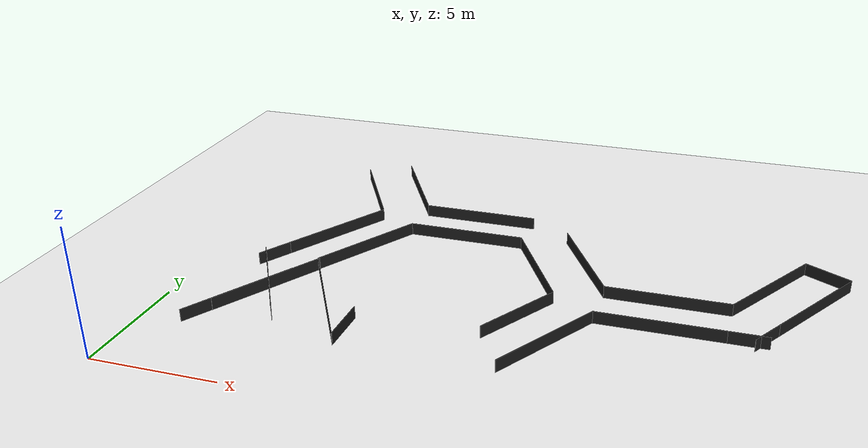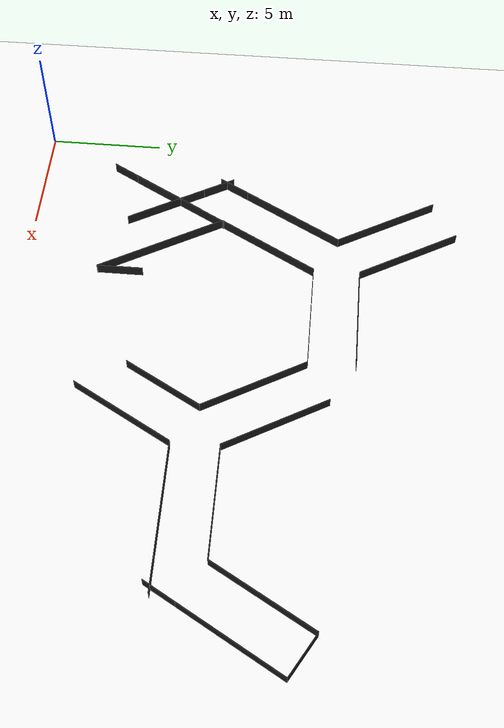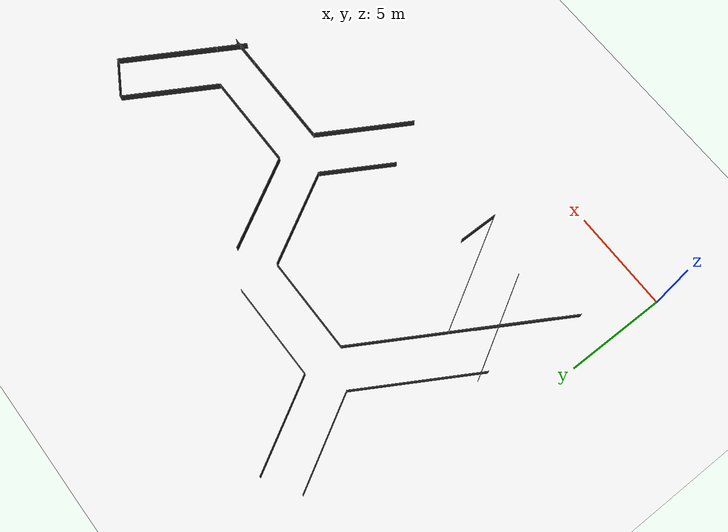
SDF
<sdf version="1.6">
 <world name="default">
  <model name="ground_plane">
   <static>1</static>
   <link name="link">
    <collision name="collision">
     <geometry><plane><normal>0 0 1</normal><size>100 100</size></plane></geometry>
     <surface><friction><ode><mu>100</mu><mu2>50</mu2></ode></friction></surface>
    </collision>
    <visual name="visual">
     <cast_shadows>0</cast_shadows>
     <geometry><plane><normal>0 0 1</normal><size>100 100</size></plane></geometry>
     <material>
      <script><uri>file://media/materials/scripts/gazebo.material</uri><name>Gazebo/White</name></script>
     </material>
    </visual>
   </link>
  </model>
  <model name="T_maze_0">
   <link name="link">
    <inertial>
     <mass>1</mass>
     <inertia>
      <ixx>0.166667</ixx>
      <ixy>0</ixy>
      <ixz>0</ixz>
      <iyy>0.166667</iyy>
      <iyz>0</iyz>
      <izz>0.166667</izz>
     </inertia>
    </inertial>
    <pose>8.67982 0.164587 -0 0 -0 0</pose>
    <visual name="ModelPreview_1::link::visual_2">
     <geometry><box><size>0.015 4.8453 0.5</size></box></geometry>
     <material>
      <script><name>Gazebo/FlatBlack</name><uri>file://media/materials/scripts/gazebo.material</uri></script>
      <shader type="pixel"><normal_map>__default__</normal_map></shader>
      <ambient>0.1 0.1 0.1 1</ambient>
      <diffuse>0.1 0.1 0.1 1</diffuse>
      <specular>0.01 0.01 0.01 1</specular>
      <emissive>0 0 0 1</emissive>
     </material>
     <pose>2 0 0 0 -0 0</pose>
    </visual>
    <visual name="visual">
     <geometry><box><size>0.015 4.8453 0.5</size></box></geometry>
     <material>
      <script><name>Gazebo/FlatBlack</name><uri>file://media/materials/scripts/gazebo.material</uri></script>
      <shader type="pixel"><normal_map>__default__</normal_map></shader>
      <ambient>0.1 0.1 0.1 1</ambient>
      <diffuse>0.1 0.1 0.1 1</diffuse>
      <specular>0.01 0.01 0.01 1</specular>
      <emissive>0 0 0 1</emissive>
     </material>
    </visual>
    <collision name="collision_1">
     <pose>2 0 0 0 -0 0</pose>
     <geometry><box><size>0.015 4.8453 0.5</size></box></geometry>
     <surface>
      <friction>
       <ode><mu>1</mu><mu2>1</mu2><fdir1>0 0 0</fdir1><slip1>0</slip1><slip2>0</slip2></ode>
       <torsional>
        <coefficient>1</coefficient>
        <patch_radius>0</patch_radius>
        <surface_radius>0</surface_radius>
        <use_patch_radius>1</use_patch_radius>
        <ode><slip>0</slip></ode>
       </torsional>
      </friction>
      <bounce><restitution_coefficient>0</restitution_coefficient><threshold>1e+06</threshold></bounce>
      <contact>
       <collide_without_contact>0</collide_without_contact>
       <collide_without_contact_bitmask>1</collide_without_contact_bitmask>
       <collide_bitmask>1</collide_bitmask>
       <ode>
        <soft_cfm>0</soft_cfm>
        <soft_erp>0.2</soft_erp>
        <kp>1e+13</kp>
        <kd>1</kd>
        <max_vel>0.01</max_vel>
        <min_depth>0</min_depth>
       </ode>
       <bullet>
        <split_impulse>1</split_impulse>
        <split_impulse_penetration_threshold>-0.01</split_impulse_penetration_threshold>
        <soft_cfm>0</soft_cfm>
        <soft_erp>0.2</soft_erp>
        <kp>1e+13</kp>
        <kd>1</kd>
       </bullet>
      </contact>
     </surface>
    </collision>
    <collision name="collision">
     <geometry><box><size>0.015 4.8453 0.5</size></box></geometry>
     <surface>
      <friction>
       <ode><mu>1</mu><mu2>1</mu2><fdir1>0 0 0</fdir1><slip1>0</slip1><slip2>0</slip2></ode>
       <torsional>
        <coefficient>1</coefficient>
        <patch_radius>0</patch_radius>
        <surface_radius>0</surface_radius>
        <use_patch_radius>1</use_patch_radius>
        <ode><slip>0</slip></ode>
       </torsional>
      </friction>
      <bounce><restitution_coefficient>0</restitution_coefficient><threshold>1e+06</threshold></bounce>
      <contact>
       <collide_without_contact>0</collide_without_contact>
       <collide_without_contact_bitmask>1</collide_without_contact_bitmask>
       <collide_bitmask>1</collide_bitmask>
       <ode>
        <soft_cfm>0</soft_cfm>
        <soft_erp>0.2</soft_erp>
        <kp>1e+13</kp>
        <kd>1</kd>
        <max_vel>0.01</max_vel>
        <min_depth>0</min_depth>
       </ode>
       <bullet>
        <split_impulse>1</split_impulse>
        <split_impulse_penetration_threshold>-0.01</split_impulse_penetration_threshold>
        <soft_cfm>0</soft_cfm>
        <soft_erp>0.2</soft_erp>
        <kp>1e+13</kp>
        <kd>1</kd>
       </bullet>
      </contact>
     </surface>
    </collision>
   </link>
   <link name="link_clone_0">
    <inertial>
     <mass>1</mass>
     <inertia>
      <ixx>0.166667</ixx>
      <ixy>0</ixy>
      <ixz>0</ixz>
      <iyy>0.166667</iyy>
      <iyz>0</iyz>
      <izz>0.166667</izz>
     </inertia>
    </inertial>
    <pose>7.58433 5.52401 0 5e-06 -0 -2.0944</pose>
    <visual name="visual_2">
     <geometry><box><size>0.015 4.8453 0.5</size></box></geometry>
     <material>
      <script><name>Gazebo/FlatBlack</name><uri>file://media/materials/scripts/gazebo.material</uri></script>
      <shader type="pixel"><normal_map>__default__</normal_map></shader>
      <ambient>0.1 0.1 0.1 1</ambient>
      <diffuse>0.1 0.1 0.1 1</diffuse>
      <specular>0.01 0.01 0.01 1</specular>
      <emissive>0 0 0 1</emissive>
     </material>
     <pose>2 0 0 0 -0 0</pose>
    </visual>
    <visual name="visual">
     <geometry><box><size>0.015 4.8453 0.5</size></box></geometry>
     <material>
      <script><name>Gazebo/FlatBlack</name><uri>file://media/materials/scripts/gazebo.material</uri></script>
      <shader type="pixel"><normal_map>__default__</normal_map></shader>
      <ambient>0.1 0.1 0.1 1</ambient>
      <diffuse>0.1 0.1 0.1 1</diffuse>
      <specular>0.01 0.01 0.01 1</specular>
      <emissive>0 0 0 1</emissive>
     </material>
    </visual>
    <collision name="collision_1">
     <pose>2 0 0 0 -0 0</pose>
     <geometry><box><size>0.015 4.8453 0.5</size></box></geometry>
     <surface>
      <friction>
       <ode><mu>1</mu><mu2>1</mu2><fdir1>0 0 0</fdir1><slip1>0</slip1><slip2>0</slip2></ode>
       <torsional>
        <coefficient>1</coefficient>
        <patch_radius>0</patch_radius>
        <surface_radius>0</surface_radius>
        <use_patch_radius>1</use_patch_radius>
        <ode><slip>0</slip></ode>
       </torsional>
      </friction>
      <bounce><restitution_coefficient>0</restitution_coefficient><threshold>1e+06</threshold></bounce>
      <contact>
       <collide_without_contact>0</collide_without_contact>
       <collide_without_contact_bitmask>1</collide_without_contact_bitmask>
       <collide_bitmask>1</collide_bitmask>
       <ode>
        <soft_cfm>0</soft_cfm>
        <soft_erp>0.2</soft_erp>
        <kp>1e+13</kp>
        <kd>1</kd>
        <max_vel>0.01</max_vel>
        <min_depth>0</min_depth>
       </ode>
       <bullet>
        <split_impulse>1</split_impulse>
        <split_impulse_penetration_threshold>-0.01</split_impulse_penetration_threshold>
        <soft_cfm>0</soft_cfm>
        <soft_erp>0.2</soft_erp>
        <kp>1e+13</kp>
        <kd>1</kd>
       </bullet>
      </contact>
     </surface>
    </collision>
    <collision name="collision">
     <geometry><box><size>0.015 4.8453 0.5</size></box></geometry>
     <surface>
      <friction>
       <ode><mu>1</mu><mu2>1</mu2><fdir1>0 0 0</fdir1><slip1>0</slip1><slip2>0</slip2></ode>
       <torsional>
        <coefficient>1</coefficient>
        <patch_radius>0</patch_radius>
        <surface_radius>0</surface_radius>
        <use_patch_radius>1</use_patch_radius>
        <ode><slip>0</slip></ode>
       </torsional>
      </friction>
      <bounce><restitution_coefficient>0</restitution_coefficient><threshold>1e+06</threshold></bounce>
      <contact>
       <collide_without_contact>0</collide_without_contact>
       <collide_without_contact_bitmask>1</collide_without_contact_bitmask>
       <collide_bitmask>1</collide_bitmask>
       <ode>
        <soft_cfm>0</soft_cfm>
        <soft_erp>0.2</soft_erp>
        <kp>1e+13</kp>
        <kd>1</kd>
        <max_vel>0.01</max_vel>
        <min_depth>0</min_depth>
       </ode>
       <bullet>
        <split_impulse>1</split_impulse>
        <split_impulse_penetration_threshold>-0.01</split_impulse_penetration_threshold>
        <soft_cfm>0</soft_cfm>
        <soft_erp>0.2</soft_erp>
        <kp>1e+13</kp>
        <kd>1</kd>
       </bullet>
      </contact>
     </surface>
    </collision>
   </link>
   <link name="link_clone_0_clone">
    <inertial>
     <mass>1</mass>
     <inertia>
      <ixx>0.166667</ixx>
      <ixy>0</ixy>
      <ixz>0</ixz>
      <iyy>0.166667</iyy>
      <iyz>0</iyz>
      <izz>0.166667</izz>
     </inertia>
    </inertial>
    <pose>12.7746 -3.46264 -0 5e-06 -0 -2.0944</pose>
    <visual name="visual_2">
     <geometry><box><size>0.015 4.8453 0.5</size></box></geometry>
     <material>
      <script><name>Gazebo/FlatBlack</name><uri>file://media/materials/scripts/gazebo.material</uri></script>
      <shader type="pixel"><normal_map>__default__</normal_map></shader>
      <ambient>0.1 0.1 0.1 1</ambient>
      <diffuse>0.1 0.1 0.1 1</diffuse>
      <specular>0.01 0.01 0.01 1</specular>
      <emissive>0 0 0 1</emissive>
     </material>
     <pose>2 0 0 0 -0 0</pose>
    </visual>
    <visual name="visual">
     <geometry><box><size>0.015 4.8453 0.5</size></box></geometry>
     <material>
      <script><name>Gazebo/FlatBlack</name><uri>file://media/materials/scripts/gazebo.material</uri></script>
      <shader type="pixel"><normal_map>__default__</normal_map></shader>
      <ambient>0.1 0.1 0.1 1</ambient>
      <diffuse>0.1 0.1 0.1 1</diffuse>
      <specular>0.01 0.01 0.01 1</specular>
      <emissive>0 0 0 1</emissive>
     </material>
    </visual>
    <collision name="collision_1">
     <pose>2 0 0 0 -0 0</pose>
     <geometry><box><size>0.015 4.8453 0.5</size></box></geometry>
     <surface>
      <friction>
       <ode><mu>1</mu><mu2>1</mu2><fdir1>0 0 0</fdir1><slip1>0</slip1><slip2>0</slip2></ode>
       <torsional>
        <coefficient>1</coefficient>
        <patch_radius>0</patch_radius>
        <surface_radius>0</surface_radius>
        <use_patch_radius>1</use_patch_radius>
        <ode><slip>0</slip></ode>
       </torsional>
      </friction>
      <bounce><restitution_coefficient>0</restitution_coefficient><threshold>1e+06</threshold></bounce>
      <contact>
       <collide_without_contact>0</collide_without_contact>
       <collide_without_contact_bitmask>1</collide_without_contact_bitmask>
       <collide_bitmask>1</collide_bitmask>
       <ode>
        <soft_cfm>0</soft_cfm>
        <soft_erp>0.2</soft_erp>
        <kp>1e+13</kp>
        <kd>1</kd>
        <max_vel>0.01</max_vel>
        <min_depth>0</min_depth>
       </ode>
       <bullet>
        <split_impulse>1</split_impulse>
        <split_impulse_penetration_threshold>-0.01</split_impulse_penetration_threshold>
        <soft_cfm>0</soft_cfm>
        <soft_erp>0.2</soft_erp>
        <kp>1e+13</kp>
        <kd>1</kd>
       </bullet>
      </contact>
     </surface>
    </collision>
    <collision name="collision">
     <geometry><box><size>0.015 4.8453 0.5</size></box></geometry>
     <surface>
      <friction>
       <ode><mu>1</mu><mu2>1</mu2><fdir1>0 0 0</fdir1><slip1>0</slip1><slip2>0</slip2></ode>
       <torsional>
        <coefficient>1</coefficient>
        <patch_radius>0</patch_radius>
        <surface_radius>0</surface_radius>
        <use_patch_radius>1</use_patch_radius>
        <ode><slip>0</slip></ode>
       </torsional>
      </friction>
      <bounce><restitution_coefficient>0</restitution_coefficient><threshold>1e+06</threshold></bounce>
      <contact>
       <collide_without_contact>0</collide_without_contact>
       <collide_without_contact_bitmask>1</collide_without_contact_bitmask>
       <collide_bitmask>1</collide_bitmask>
       <ode>
        <soft_cfm>0</soft_cfm>
        <soft_erp>0.2</soft_erp>
        <kp>1e+13</kp>
        <kd>1</kd>
        <max_vel>0.01</max_vel>
        <min_depth>0</min_depth>
       </ode>
       <bullet>
        <split_impulse>1</split_impulse>
        <split_impulse_penetration_threshold>-0.01</split_impulse_penetration_threshold>
        <soft_cfm>0</soft_cfm>
        <soft_erp>0.2</soft_erp>
        <kp>1e+13</kp>
        <kd>1</kd>
       </bullet>
      </contact>
     </surface>
    </collision>
   </link>
   <link name="link_clone_0_clone_clone_1_clone_0">
    <inertial>
     <mass>1</mass>
     <inertia>
      <ixx>0.166667</ixx>
      <ixy>0</ixy>
      <ixz>0</ixz>
      <iyy>0.166667</iyy>
      <iyz>0</iyz>
      <izz>0.166667</izz>
     </inertia>
    </inertial>
    <pose>2.39592 3.79036 1e-06 5e-06 -0 2.0944</pose>
    <visual name="visual">
     <geometry><box><size>0.015 3.7053 0.5</size></box></geometry>
     <material>
      <script><name>Gazebo/FlatBlack</name><uri>file://media/materials/scripts/gazebo.material</uri></script>
      <shader type="pixel"><normal_map>__default__</normal_map></shader>
      <ambient>0.1 0.1 0.1 1</ambient>
      <diffuse>0.1 0.1 0.1 1</diffuse>
      <specular>0.01 0.01 0.01 1</specular>
      <emissive>0 0 0 1</emissive>
     </material>
     <pose>0 -0.57 0 0 -0 0</pose>
    </visual>
    <visual name="visual_2">
     <geometry><box><size>0.015 4.8453 0.5</size></box></geometry>
     <material>
      <script><name>Gazebo/FlatBlack</name><uri>file://media/materials/scripts/gazebo.material</uri></script>
      <shader type="pixel"><normal_map>__default__</normal_map></shader>
      <ambient>0.1 0.1 0.1 1</ambient>
      <diffuse>0.1 0.1 0.1 1</diffuse>
      <specular>0.01 0.01 0.01 1</specular>
      <emissive>0 0 0 1</emissive>
     </material>
     <pose>2 0 0 0 -0 0</pose>
    </visual>
    <collision name="collision_1">
     <pose>2 0 0 0 -0 0</pose>
     <geometry><box><size>0.015 4.8453 0.5</size></box></geometry>
     <surface>
      <friction>
       <ode><mu>1</mu><mu2>1</mu2><fdir1>0 0 0</fdir1><slip1>0</slip1><slip2>0</slip2></ode>
       <torsional>
        <coefficient>1</coefficient>
        <patch_radius>0</patch_radius>
        <surface_radius>0</surface_radius>
        <use_patch_radius>1</use_patch_radius>
        <ode><slip>0</slip></ode>
       </torsional>
      </friction>
      <bounce><restitution_coefficient>0</restitution_coefficient><threshold>1e+06</threshold></bounce>
      <contact>
       <collide_without_contact>0</collide_without_contact>
       <collide_without_contact_bitmask>1</collide_without_contact_bitmask>
       <collide_bitmask>1</collide_bitmask>
       <ode>
        <soft_cfm>0</soft_cfm>
        <soft_erp>0.2</soft_erp>
        <kp>1e+13</kp>
        <kd>1</kd>
        <max_vel>0.01</max_vel>
        <min_depth>0</min_depth>
       </ode>
       <bullet>
        <split_impulse>1</split_impulse>
        <split_impulse_penetration_threshold>-0.01</split_impulse_penetration_threshold>
        <soft_cfm>0</soft_cfm>
        <soft_erp>0.2</soft_erp>
        <kp>1e+13</kp>
        <kd>1</kd>
       </bullet>
      </contact>
     </surface>
    </collision>
    <collision name="collision">
     <pose>0 -0.57 0 0 -0 0</pose>
     <geometry><box><size>0.015 3.7053 0.5</size></box></geometry>
     <surface>
      <friction>
       <ode><mu>1</mu><mu2>1</mu2><fdir1>0 0 0</fdir1><slip1>0</slip1><slip2>0</slip2></ode>
       <torsional>
        <coefficient>1</coefficient>
        <patch_radius>0</patch_radius>
        <surface_radius>0</surface_radius>
        <use_patch_radius>1</use_patch_radius>
        <ode><slip>0</slip></ode>
       </torsional>
      </friction>
      <bounce><restitution_coefficient>0</restitution_coefficient><threshold>1e+06</threshold></bounce>
      <contact>
       <collide_without_contact>0</collide_without_contact>
       <collide_without_contact_bitmask>1</collide_without_contact_bitmask>
       <collide_bitmask>1</collide_bitmask>
       <ode>
        <soft_cfm>0</soft_cfm>
        <soft_erp>0.2</soft_erp>
        <kp>1e+13</kp>
        <kd>1</kd>
        <max_vel>0.01</max_vel>
        <min_depth>0</min_depth>
       </ode>
       <bullet>
        <split_impulse>1</split_impulse>
        <split_impulse_penetration_threshold>-0.01</split_impulse_penetration_threshold>
        <soft_cfm>0</soft_cfm>
        <soft_erp>0.2</soft_erp>
        <kp>1e+13</kp>
        <kd>1</kd>
       </bullet>
      </contact>
     </surface>
    </collision>
   </link>
   <link name="link_clone_1_clone">
    <inertial>
     <mass>1</mass>
     <inertia>
      <ixx>0.166667</ixx>
      <ixy>0</ixy>
      <ixz>0</ixz>
      <iyy>0.166667</iyy>
      <iyz>0</iyz>
      <izz>0.166667</izz>
     </inertia>
    </inertial>
    <pose>3.49174 9.15144 -0 0 -0 0</pose>
    <visual name="visual">
     <geometry><box><size>0.015 4.8453 0.5</size></box></geometry>
     <material>
      <script><name>Gazebo/FlatBlack</name><uri>file://media/materials/scripts/gazebo.material</uri></script>
      <shader type="pixel"><normal_map>__default__</normal_map></shader>
      <ambient>0.1 0.1 0.1 1</ambient>
      <diffuse>0.1 0.1 0.1 1</diffuse>
      <specular>0.01 0.01 0.01 1</specular>
      <emissive>0 0 0 1</emissive>
     </material>
    </visual>
    <visual name="visual_2">
     <geometry><box><size>0.015 4.8453 0.5</size></box></geometry>
     <material>
      <script><name>Gazebo/FlatBlack</name><uri>file://media/materials/scripts/gazebo.material</uri></script>
      <shader type="pixel"><normal_map>__default__</normal_map></shader>
      <ambient>0.1 0.1 0.1 1</ambient>
      <diffuse>0.1 0.1 0.1 1</diffuse>
      <specular>0.01 0.01 0.01 1</specular>
      <emissive>0 0 0 1</emissive>
     </material>
     <pose>2 0 0 0 -0 0</pose>
    </visual>
    <collision name="collision">
     <geometry><box><size>0.015 4.8453 0.5</size></box></geometry>
     <surface>
      <friction>
       <ode><mu>1</mu><mu2>1</mu2><fdir1>0 0 0</fdir1><slip1>0</slip1><slip2>0</slip2></ode>
       <torsional>
        <coefficient>1</coefficient>
        <patch_radius>0</patch_radius>
        <surface_radius>0</surface_radius>
        <use_patch_radius>1</use_patch_radius>
        <ode><slip>0</slip></ode>
       </torsional>
      </friction>
      <bounce><restitution_coefficient>0</restitution_coefficient><threshold>1e+06</threshold></bounce>
      <contact>
       <collide_without_contact>0</collide_without_contact>
       <collide_without_contact_bitmask>1</collide_without_contact_bitmask>
       <collide_bitmask>1</collide_bitmask>
       <ode>
        <soft_cfm>0</soft_cfm>
        <soft_erp>0.2</soft_erp>
        <kp>1e+13</kp>
        <kd>1</kd>
        <max_vel>0.01</max_vel>
        <min_depth>0</min_depth>
       </ode>
       <bullet>
        <split_impulse>1</split_impulse>
        <split_impulse_penetration_threshold>-0.01</split_impulse_penetration_threshold>
        <soft_cfm>0</soft_cfm>
        <soft_erp>0.2</soft_erp>
        <kp>1e+13</kp>
        <kd>1</kd>
       </bullet>
      </contact>
     </surface>
    </collision>
    <collision name="collision_1">
     <pose>2 0 0 0 -0 0</pose>
     <geometry><box><size>0.015 4.8453 0.5</size></box></geometry>
     <surface>
      <friction>
       <ode><mu>1</mu><mu2>1</mu2><fdir1>0 0 0</fdir1><slip1>0</slip1><slip2>0</slip2></ode>
       <torsional>
        <coefficient>1</coefficient>
        <patch_radius>0</patch_radius>
        <surface_radius>0</surface_radius>
        <use_patch_radius>1</use_patch_radius>
        <ode><slip>0</slip></ode>
       </torsional>
      </friction>
      <bounce><restitution_coefficient>0</restitution_coefficient><threshold>1e+06</threshold></bounce>
      <contact>
       <collide_without_contact>0</collide_without_contact>
       <collide_without_contact_bitmask>1</collide_without_contact_bitmask>
       <collide_bitmask>1</collide_bitmask>
       <ode>
        <soft_cfm>0</soft_cfm>
        <soft_erp>0.2</soft_erp>
        <kp>1e+13</kp>
        <kd>1</kd>
        <max_vel>0.01</max_vel>
        <min_depth>0</min_depth>
       </ode>
       <bullet>
        <split_impulse>1</split_impulse>
        <split_impulse_penetration_threshold>-0.01</split_impulse_penetration_threshold>
        <soft_cfm>0</soft_cfm>
        <soft_erp>0.2</soft_erp>
        <kp>1e+13</kp>
        <kd>1</kd>
       </bullet>
      </contact>
     </surface>
    </collision>
   </link>
   <link name="link_clone_clone">
    <inertial>
     <mass>1</mass>
     <inertia>
      <ixx>0.166667</ixx>
      <ixy>0</ixy>
      <ixz>0</ixz>
      <iyy>0.166667</iyy>
      <iyz>0</iyz>
      <izz>0.166667</izz>
     </inertia>
    </inertial>
    <pose>7.58495 -5.19374 -0 5e-06 -0 2.0944</pose>
    <visual name="visual_2">
     <geometry><box><size>0.015 4.8453 0.5</size></box></geometry>
     <material>
      <script><name>Gazebo/FlatBlack</name><uri>file://media/materials/scripts/gazebo.material</uri></script>
      <shader type="pixel"><normal_map>__default__</normal_map></shader>
      <ambient>0.1 0.1 0.1 1</ambient>
      <diffuse>0.1 0.1 0.1 1</diffuse>
      <specular>0.01 0.01 0.01 1</specular>
      <emissive>0 0 0 1</emissive>
     </material>
     <pose>2 0 0 0 -0 0</pose>
    </visual>
    <visual name="visual">
     <geometry><box><size>0.015 4.8453 0.5</size></box></geometry>
     <material>
      <script><name>Gazebo/FlatBlack</name><uri>file://media/materials/scripts/gazebo.material</uri></script>
      <shader type="pixel"><normal_map>__default__</normal_map></shader>
      <ambient>0.1 0.1 0.1 1</ambient>
      <diffuse>0.1 0.1 0.1 1</diffuse>
      <specular>0.01 0.01 0.01 1</specular>
      <emissive>0 0 0 1</emissive>
     </material>
    </visual>
    <collision name="collision">
     <geometry><box><size>0.015 4.8453 0.5</size></box></geometry>
     <surface>
      <friction>
       <ode><mu>1</mu><mu2>1</mu2><fdir1>0 0 0</fdir1><slip1>0</slip1><slip2>0</slip2></ode>
       <torsional>
        <coefficient>1</coefficient>
        <patch_radius>0</patch_radius>
        <surface_radius>0</surface_radius>
        <use_patch_radius>1</use_patch_radius>
        <ode><slip>0</slip></ode>
       </torsional>
      </friction>
      <bounce><restitution_coefficient>0</restitution_coefficient><threshold>1e+06</threshold></bounce>
      <contact>
       <collide_without_contact>0</collide_without_contact>
       <collide_without_contact_bitmask>1</collide_without_contact_bitmask>
       <collide_bitmask>1</collide_bitmask>
       <ode>
        <soft_cfm>0</soft_cfm>
        <soft_erp>0.2</soft_erp>
        <kp>1e+13</kp>
        <kd>1</kd>
        <max_vel>0.01</max_vel>
        <min_depth>0</min_depth>
       </ode>
       <bullet>
        <split_impulse>1</split_impulse>
        <split_impulse_penetration_threshold>-0.01</split_impulse_penetration_threshold>
        <soft_cfm>0</soft_cfm>
        <soft_erp>0.2</soft_erp>
        <kp>1e+13</kp>
        <kd>1</kd>
       </bullet>
      </contact>
     </surface>
    </collision>
    <collision name="collision_1">
     <pose>2 0 0 0 -0 0</pose>
     <geometry><box><size>0.015 4.8453 0.5</size></box></geometry>
     <surface>
      <friction>
       <ode><mu>1</mu><mu2>1</mu2><fdir1>0 0 0</fdir1><slip1>0</slip1><slip2>0</slip2></ode>
       <torsional>
        <coefficient>1</coefficient>
        <patch_radius>0</patch_radius>
        <surface_radius>0</surface_radius>
        <use_patch_radius>1</use_patch_radius>
        <ode><slip>0</slip></ode>
       </torsional>
      </friction>
      <bounce><restitution_coefficient>0</restitution_coefficient><threshold>1e+06</threshold></bounce>
      <contact>
       <collide_without_contact>0</collide_without_contact>
       <collide_without_contact_bitmask>1</collide_without_contact_bitmask>
       <collide_bitmask>1</collide_bitmask>
       <ode>
        <soft_cfm>0</soft_cfm>
        <soft_erp>0.2</soft_erp>
        <kp>1e+13</kp>
        <kd>1</kd>
        <max_vel>0.01</max_vel>
        <min_depth>0</min_depth>
       </ode>
       <bullet>
        <split_impulse>1</split_impulse>
        <split_impulse_penetration_threshold>-0.01</split_impulse_penetration_threshold>
        <soft_cfm>0</soft_cfm>
        <soft_erp>0.2</soft_erp>
        <kp>1e+13</kp>
        <kd>1</kd>
       </bullet>
      </contact>
     </surface>
    </collision>
   </link>
   <link name="link_clone_clone_1_clone_clone">
    <inertial>
     <mass>1</mass>
     <inertia>
      <ixx>0.166667</ixx>
      <ixy>0</ixy>
      <ixz>0</ixz>
      <iyy>0.166667</iyy>
      <iyz>0</iyz>
      <izz>0.166667</izz>
     </inertia>
    </inertial>
    <pose>7.58631 12.7787 0 5e-06 -0 2.0944</pose>
    <visual name="visual">
     <geometry><box><size>0.015 4.8453 0.5</size></box></geometry>
     <material>
      <script><name>Gazebo/FlatBlack</name><uri>file://media/materials/scripts/gazebo.material</uri></script>
      <shader type="pixel"><normal_map>__default__</normal_map></shader>
      <ambient>0.1 0.1 0.1 1</ambient>
      <diffuse>0.1 0.1 0.1 1</diffuse>
      <specular>0.01 0.01 0.01 1</specular>
      <emissive>0 0 0 1</emissive>
     </material>
    </visual>
    <visual name="visual_2">
     <geometry><box><size>0.015 4.8453 0.5</size></box></geometry>
     <material>
      <script><name>Gazebo/FlatBlack</name><uri>file://media/materials/scripts/gazebo.material</uri></script>
      <shader type="pixel"><normal_map>__default__</normal_map></shader>
      <ambient>0.1 0.1 0.1 1</ambient>
      <diffuse>0.1 0.1 0.1 1</diffuse>
      <specular>0.01 0.01 0.01 1</specular>
      <emissive>0 0 0 1</emissive>
     </material>
     <pose>2 0 0 0 -0 0</pose>
    </visual>
    <collision name="collision_1">
     <pose>2 0 0 0 -0 0</pose>
     <geometry><box><size>0.015 4.8453 0.5</size></box></geometry>
     <surface>
      <friction>
       <ode><mu>1</mu><mu2>1</mu2><fdir1>0 0 0</fdir1><slip1>0</slip1><slip2>0</slip2></ode>
       <torsional>
        <coefficient>1</coefficient>
        <patch_radius>0</patch_radius>
        <surface_radius>0</surface_radius>
        <use_patch_radius>1</use_patch_radius>
        <ode><slip>0</slip></ode>
       </torsional>
      </friction>
      <bounce><restitution_coefficient>0</restitution_coefficient><threshold>1e+06</threshold></bounce>
      <contact>
       <collide_without_contact>0</collide_without_contact>
       <collide_without_contact_bitmask>1</collide_without_contact_bitmask>
       <collide_bitmask>1</collide_bitmask>
       <ode>
        <soft_cfm>0</soft_cfm>
        <soft_erp>0.2</soft_erp>
        <kp>1e+13</kp>
        <kd>1</kd>
        <max_vel>0.01</max_vel>
        <min_depth>0</min_depth>
       </ode>
       <bullet>
        <split_impulse>1</split_impulse>
        <split_impulse_penetration_threshold>-0.01</split_impulse_penetration_threshold>
        <soft_cfm>0</soft_cfm>
        <soft_erp>0.2</soft_erp>
        <kp>1e+13</kp>
        <kd>1</kd>
       </bullet>
      </contact>
     </surface>
    </collision>
    <collision name="collision">
     <geometry><box><size>0.015 4.8453 0.5</size></box></geometry>
     <surface>
      <friction>
       <ode><mu>1</mu><mu2>1</mu2><fdir1>0 0 0</fdir1><slip1>0</slip1><slip2>0</slip2></ode>
       <torsional>
        <coefficient>1</coefficient>
        <patch_radius>0</patch_radius>
        <surface_radius>0</surface_radius>
        <use_patch_radius>1</use_patch_radius>
        <ode><slip>0</slip></ode>
       </torsional>
      </friction>
      <bounce><restitution_coefficient>0</restitution_coefficient><threshold>1e+06</threshold></bounce>
      <contact>
       <collide_without_contact>0</collide_without_contact>
       <collide_without_contact_bitmask>1</collide_without_contact_bitmask>
       <collide_bitmask>1</collide_bitmask>
       <ode>
        <soft_cfm>0</soft_cfm>
        <soft_erp>0.2</soft_erp>
        <kp>1e+13</kp>
        <kd>1</kd>
        <max_vel>0.01</max_vel>
        <min_depth>0</min_depth>
       </ode>
       <bullet>
        <split_impulse>1</split_impulse>
        <split_impulse_penetration_threshold>-0.01</split_impulse_penetration_threshold>
        <soft_cfm>0</soft_cfm>
        <soft_erp>0.2</soft_erp>
        <kp>1e+13</kp>
        <kd>1</kd>
       </bullet>
      </contact>
     </surface>
    </collision>
   </link>
   <link name="link_clone_clone_1_clone_clone_0_clone_clone">
    <inertial>
     <mass>1</mass>
     <inertia>
      <ixx>0.166667</ixx>
      <ixy>0</ixy>
      <ixz>0</ixz>
      <iyy>0.166667</iyy>
      <iyz>0</iyz>
      <izz>0.166667</izz>
     </inertia>
    </inertial>
    <pose>2.39971 -3.46147 3.1e-05 5e-06 -0 -2.0944</pose>
    <visual name="visual">
     <geometry><box><size>0.015 6 0.5</size></box></geometry>
     <material>
      <script><name>Gazebo/FlatBlack</name><uri>file://media/materials/scripts/gazebo.material</uri></script>
      <shader type="pixel"><normal_map>__default__</normal_map></shader>
      <ambient>0.1 0.1 0.1 1</ambient>
      <diffuse>0.1 0.1 0.1 1</diffuse>
      <specular>0.01 0.01 0.01 1</specular>
      <emissive>0 0 0 1</emissive>
     </material>
     <pose>0 -0.58 0 0 -0 0</pose>
    </visual>
    <visual name="visual_2">
     <geometry><box><size>0.015 4.8453 0.5</size></box></geometry>
     <material>
      <script><name>Gazebo/FlatBlack</name><uri>file://media/materials/scripts/gazebo.material</uri></script>
      <shader type="pixel"><normal_map>__default__</normal_map></shader>
      <ambient>0.1 0.1 0.1 1</ambient>
      <diffuse>0.1 0.1 0.1 1</diffuse>
      <specular>0.01 0.01 0.01 1</specular>
      <emissive>0 0 0 1</emissive>
     </material>
     <pose>2 1.1 0 0 -0 0</pose>
    </visual>
    <collision name="collision">
     <pose>0 -0.58 0 0 -0 0</pose>
     <geometry><box><size>0.015 6 0.5</size></box></geometry>
     <surface>
      <friction>
       <ode><mu>1</mu><mu2>1</mu2><fdir1>0 0 0</fdir1><slip1>0</slip1><slip2>0</slip2></ode>
       <torsional>
        <coefficient>1</coefficient>
        <patch_radius>0</patch_radius>
        <surface_radius>0</surface_radius>
        <use_patch_radius>1</use_patch_radius>
        <ode><slip>0</slip></ode>
       </torsional>
      </friction>
      <bounce><restitution_coefficient>0</restitution_coefficient><threshold>1e+06</threshold></bounce>
      <contact>
       <collide_without_contact>0</collide_without_contact>
       <collide_without_contact_bitmask>1</collide_without_contact_bitmask>
       <collide_bitmask>1</collide_bitmask>
       <ode>
        <soft_cfm>0</soft_cfm>
        <soft_erp>0.2</soft_erp>
        <kp>1e+13</kp>
        <kd>1</kd>
        <max_vel>0.01</max_vel>
        <min_depth>0</min_depth>
       </ode>
       <bullet>
        <split_impulse>1</split_impulse>
        <split_impulse_penetration_threshold>-0.01</split_impulse_penetration_threshold>
        <soft_cfm>0</soft_cfm>
        <soft_erp>0.2</soft_erp>
        <kp>1e+13</kp>
        <kd>1</kd>
       </bullet>
      </contact>
     </surface>
    </collision>
    <collision name="collision_1">
     <pose>2 1.1 0 0 -0 0</pose>
     <geometry><box><size>0.015 4.8453 0.5</size></box></geometry>
     <surface>
      <friction>
       <ode><mu>1</mu><mu2>1</mu2><fdir1>0 0 0</fdir1><slip1>0</slip1><slip2>0</slip2></ode>
       <torsional>
        <coefficient>1</coefficient>
        <patch_radius>0</patch_radius>
        <surface_radius>0</surface_radius>
        <use_patch_radius>1</use_patch_radius>
        <ode><slip>0</slip></ode>
       </torsional>
      </friction>
      <bounce><restitution_coefficient>0</restitution_coefficient><threshold>1e+06</threshold></bounce>
      <contact>
       <collide_without_contact>0</collide_without_contact>
       <collide_without_contact_bitmask>1</collide_without_contact_bitmask>
       <collide_bitmask>1</collide_bitmask>
       <ode>
        <soft_cfm>0</soft_cfm>
        <soft_erp>0.2</soft_erp>
        <kp>1e+13</kp>
        <kd>1</kd>
        <max_vel>0.01</max_vel>
        <min_depth>0</min_depth>
       </ode>
       <bullet>
        <split_impulse>1</split_impulse>
        <split_impulse_penetration_threshold>-0.01</split_impulse_penetration_threshold>
        <soft_cfm>0</soft_cfm>
        <soft_erp>0.2</soft_erp>
        <kp>1e+13</kp>
        <kd>1</kd>
       </bullet>
      </contact>
     </surface>
    </collision>
   </link>
   <link name="link_clone_clone_clone_clone_0_clone_0_clone">
    <inertial>
     <mass>1</mass>
     <inertia>
      <ixx>0.166667</ixx>
      <ixy>0</ixy>
      <ixz>0</ixz>
      <iyy>0.166667</iyy>
      <iyz>0</iyz>
      <izz>0.166667</izz>
     </inertia>
    </inertial>
    <pose>3.49175 12.3123 -9e-06 5e-06 -0 0</pose>
    <visual name="visual_2">
     <geometry><box><size>0.015 1.5 0.5</size></box></geometry>
     <material>
      <script><name>Gazebo/FlatBlack</name><uri>file://media/materials/scripts/gazebo.material</uri></script>
      <shader type="pixel"><normal_map>__default__</normal_map></shader>
      <ambient>0.1 0.1 0.1 1</ambient>
      <diffuse>0.1 0.1 0.1 1</diffuse>
      <specular>0.01 0.01 0.01 1</specular>
      <emissive>0 0 0 1</emissive>
     </material>
     <pose>0.3525 0.615 0 0 -0 2.0944</pose>
    </visual>
    <visual name="visual">
     <geometry><box><size>0.015 1.5 0.5</size></box></geometry>
     <material>
      <script><name>Gazebo/FlatBlack</name><uri>file://media/materials/scripts/gazebo.material</uri></script>
      <shader type="pixel"><normal_map>__default__</normal_map></shader>
      <ambient>0.1 0.1 0.1 1</ambient>
      <diffuse>0.1 0.1 0.1 1</diffuse>
      <specular>0.01 0.01 0.01 1</specular>
      <emissive>0 0 0 1</emissive>
     </material>
    </visual>
    <collision name="collision">
     <geometry><box><size>0.015 1.5 0.5</size></box></geometry>
     <surface>
      <friction>
       <ode><mu>1</mu><mu2>1</mu2><fdir1>0 0 0</fdir1><slip1>0</slip1><slip2>0</slip2></ode>
       <torsional>
        <coefficient>1</coefficient>
        <patch_radius>0</patch_radius>
        <surface_radius>0</surface_radius>
        <use_patch_radius>1</use_patch_radius>
        <ode><slip>0</slip></ode>
       </torsional>
      </friction>
      <bounce><restitution_coefficient>0</restitution_coefficient><threshold>1e+06</threshold></bounce>
      <contact>
       <collide_without_contact>0</collide_without_contact>
       <collide_without_contact_bitmask>1</collide_without_contact_bitmask>
       <collide_bitmask>1</collide_bitmask>
       <ode>
        <soft_cfm>0</soft_cfm>
        <soft_erp>0.2</soft_erp>
        <kp>1e+13</kp>
        <kd>1</kd>
        <max_vel>0.01</max_vel>
        <min_depth>0</min_depth>
       </ode>
       <bullet>
        <split_impulse>1</split_impulse>
        <split_impulse_penetration_threshold>-0.01</split_impulse_penetration_threshold>
        <soft_cfm>0</soft_cfm>
        <soft_erp>0.2</soft_erp>
        <kp>1e+13</kp>
        <kd>1</kd>
       </bullet>
      </contact>
     </surface>
    </collision>
    <collision name="collision_2">
     <pose>0.3525 0.615 0 0 -0 2.0944</pose>
     <geometry><box><size>0.015 1.5 0.5</size></box></geometry>
     <surface>
      <friction>
       <ode><mu>1</mu><mu2>1</mu2><fdir1>0 0 0</fdir1><slip1>0</slip1><slip2>0</slip2></ode>
       <torsional>
        <coefficient>1</coefficient>
        <patch_radius>0</patch_radius>
        <surface_radius>0</surface_radius>
        <use_patch_radius>1</use_patch_radius>
        <ode><slip>0</slip></ode>
       </torsional>
      </friction>
      <bounce><restitution_coefficient>0</restitution_coefficient><threshold>1e+06</threshold></bounce>
      <contact>
       <collide_without_contact>0</collide_without_contact>
       <collide_without_contact_bitmask>1</collide_without_contact_bitmask>
       <collide_bitmask>1</collide_bitmask>
       <ode>
        <soft_cfm>0</soft_cfm>
        <soft_erp>0.2</soft_erp>
        <kp>1e+13</kp>
        <kd>1</kd>
        <max_vel>0.01</max_vel>
        <min_depth>0</min_depth>
       </ode>
       <bullet>
        <split_impulse>1</split_impulse>
        <split_impulse_penetration_threshold>-0.01</split_impulse_penetration_threshold>
        <soft_cfm>0</soft_cfm>
        <soft_erp>0.2</soft_erp>
        <kp>1e+13</kp>
        <kd>1</kd>
       </bullet>
      </contact>
     </surface>
    </collision>
   </link>
   <link name="link_clone_clone_clone_clone_0_clone_1">
    <inertial>
     <mass>1</mass>
     <inertia>
      <ixx>0.166667</ixx>
      <ixy>0</ixy>
      <ixz>0</ixz>
      <iyy>0.166667</iyy>
      <iyz>0</iyz>
      <izz>0.166667</izz>
     </inertia>
    </inertial>
    <pose>4.85175 -6.77188 -9e-06 5e-06 -0 2.0944</pose>
    <visual name="visual">
     <geometry><box><size>0.015 1.5 0.5</size></box></geometry>
     <material>
      <script><name>Gazebo/FlatBlack</name><uri>file://media/materials/scripts/gazebo.material</uri></script>
      <shader type="pixel"><normal_map>__default__</normal_map></shader>
      <ambient>0.1 0.1 0.1 1</ambient>
      <diffuse>0.1 0.1 0.1 1</diffuse>
      <specular>0.01 0.01 0.01 1</specular>
      <emissive>0 0 0 1</emissive>
     </material>
    </visual>
    <visual name="visual_2">
     <geometry><box><size>0.015 1.5 0.5</size></box></geometry>
     <material>
      <script><name>Gazebo/FlatBlack</name><uri>file://media/materials/scripts/gazebo.material</uri></script>
      <shader type="pixel"><normal_map>__default__</normal_map></shader>
      <ambient>0.1 0.1 0.1 1</ambient>
      <diffuse>0.1 0.1 0.1 1</diffuse>
      <specular>0.01 0.01 0.01 1</specular>
      <emissive>0 0 0 1</emissive>
     </material>
     <pose>0.3525 0.615 0 0 -0 2.0944</pose>
    </visual>
    <collision name="collision">
     <geometry><box><size>0.015 1.5 0.5</size></box></geometry>
     <surface>
      <friction>
       <ode><mu>1</mu><mu2>1</mu2><fdir1>0 0 0</fdir1><slip1>0</slip1><slip2>0</slip2></ode>
       <torsional>
        <coefficient>1</coefficient>
        <patch_radius>0</patch_radius>
        <surface_radius>0</surface_radius>
        <use_patch_radius>1</use_patch_radius>
        <ode><slip>0</slip></ode>
       </torsional>
      </friction>
      <bounce><restitution_coefficient>0</restitution_coefficient><threshold>1e+06</threshold></bounce>
      <contact>
       <collide_without_contact>0</collide_without_contact>
       <collide_without_contact_bitmask>1</collide_without_contact_bitmask>
       <collide_bitmask>1</collide_bitmask>
       <ode>
        <soft_cfm>0</soft_cfm>
        <soft_erp>0.2</soft_erp>
        <kp>1e+13</kp>
        <kd>1</kd>
        <max_vel>0.01</max_vel>
        <min_depth>0</min_depth>
       </ode>
       <bullet>
        <split_impulse>1</split_impulse>
        <split_impulse_penetration_threshold>-0.01</split_impulse_penetration_threshold>
        <soft_cfm>0</soft_cfm>
        <soft_erp>0.2</soft_erp>
        <kp>1e+13</kp>
        <kd>1</kd>
       </bullet>
      </contact>
     </surface>
    </collision>
    <collision name="collision_2">
     <pose>0.3525 0.615 0 0 -0 2.0944</pose>
     <geometry><box><size>0.015 1.5 0.5</size></box></geometry>
     <surface>
      <friction>
       <ode><mu>1</mu><mu2>1</mu2><fdir1>0 0 0</fdir1><slip1>0</slip1><slip2>0</slip2></ode>
       <torsional>
        <coefficient>1</coefficient>
        <patch_radius>0</patch_radius>
        <surface_radius>0</surface_radius>
        <use_patch_radius>1</use_patch_radius>
        <ode><slip>0</slip></ode>
       </torsional>
      </friction>
      <bounce><restitution_coefficient>0</restitution_coefficient><threshold>1e+06</threshold></bounce>
      <contact>
       <collide_without_contact>0</collide_without_contact>
       <collide_without_contact_bitmask>1</collide_without_contact_bitmask>
       <collide_bitmask>1</collide_bitmask>
       <ode>
        <soft_cfm>0</soft_cfm>
        <soft_erp>0.2</soft_erp>
        <kp>1e+13</kp>
        <kd>1</kd>
        <max_vel>0.01</max_vel>
        <min_depth>0</min_depth>
       </ode>
       <bullet>
        <split_impulse>1</split_impulse>
        <split_impulse_penetration_threshold>-0.01</split_impulse_penetration_threshold>
        <soft_cfm>0</soft_cfm>
        <soft_erp>0.2</soft_erp>
        <kp>1e+13</kp>
        <kd>1</kd>
       </bullet>
      </contact>
     </surface>
    </collision>
   </link>
   <link name="link_clone_clone_clone_clone_clone_0_clone">
    <inertial>
     <mass>1</mass>
     <inertia>
      <ixx>0.166667</ixx>
      <ixy>0</ixy>
      <ixz>0</ixz>
      <iyy>0.166667</iyy>
      <iyz>0</iyz>
      <izz>0.166667</izz>
     </inertia>
    </inertial>
    <pose>9.17812 14.8519 -1e-06 4e-06 -2e-06 0.5236</pose>
    <visual name="visual">
     <geometry><box><size>0.015 2 0.5</size></box></geometry>
     <material>
      <script><name>Gazebo/FlatBlack</name><uri>file://media/materials/scripts/gazebo.material</uri></script>
      <shader type="pixel"><normal_map>__default__</normal_map></shader>
      <ambient>0.1 0.1 0.1 1</ambient>
      <diffuse>0.1 0.1 0.1 1</diffuse>
      <specular>0.01 0.01 0.01 1</specular>
      <emissive>0 0 0 1</emissive>
     </material>
    </visual>
    <collision name="collision">
     <geometry><box><size>0.015 2 0.5</size></box></geometry>
     <surface>
      <friction>
       <ode><mu>1</mu><mu2>1</mu2><fdir1>0 0 0</fdir1><slip1>0</slip1><slip2>0</slip2></ode>
       <torsional>
        <coefficient>1</coefficient>
        <patch_radius>0</patch_radius>
        <surface_radius>0</surface_radius>
        <use_patch_radius>1</use_patch_radius>
        <ode><slip>0</slip></ode>
       </torsional>
      </friction>
      <bounce><restitution_coefficient>0</restitution_coefficient><threshold>1e+06</threshold></bounce>
      <contact>
       <collide_without_contact>0</collide_without_contact>
       <collide_without_contact_bitmask>1</collide_without_contact_bitmask>
       <collide_bitmask>1</collide_bitmask>
       <ode>
        <soft_cfm>0</soft_cfm>
        <soft_erp>0.2</soft_erp>
        <kp>1e+13</kp>
        <kd>1</kd>
        <max_vel>0.01</max_vel>
        <min_depth>0</min_depth>
       </ode>
       <bullet>
        <split_impulse>1</split_impulse>
        <split_impulse_penetration_threshold>-0.01</split_impulse_penetration_threshold>
        <soft_cfm>0</soft_cfm>
        <soft_erp>0.2</soft_erp>
        <kp>1e+13</kp>
        <kd>1</kd>
       </bullet>
      </contact>
     </surface>
    </collision>
   </link>
   <link name="link_clone_clone_clone_clone_clone_clone_clone">
    <inertial>
     <mass>1</mass>
     <inertia>
      <ixx>0.166667</ixx>
      <ixy>0</ixy>
      <ixz>0</ixz>
      <iyy>0.166667</iyy>
      <iyz>0</iyz>
      <izz>0.166667</izz>
     </inertia>
    </inertial>
    <pose>0.292336 -1.68075 -1e-06 -0 -4e-06 1.5708</pose>
    <visual name="visual">
     <geometry><box><size>0.015 2 0.5</size></box></geometry>
     <material>
      <script><name>Gazebo/FlatBlack</name><uri>file://media/materials/scripts/gazebo.material</uri></script>
      <shader type="pixel"><normal_map>__default__</normal_map></shader>
      <ambient>0.1 0.1 0.1 1</ambient>
      <diffuse>0.1 0.1 0.1 1</diffuse>
      <specular>0.01 0.01 0.01 1</specular>
      <emissive>0 0 0 1</emissive>
     </material>
    </visual>
    <collision name="collision">
     <geometry><box><size>0.015 2 0.5</size></box></geometry>
     <surface>
      <friction>
       <ode><mu>1</mu><mu2>1</mu2><fdir1>0 0 0</fdir1><slip1>0</slip1><slip2>0</slip2></ode>
       <torsional>
        <coefficient>1</coefficient>
        <patch_radius>0</patch_radius>
        <surface_radius>0</surface_radius>
        <use_patch_radius>1</use_patch_radius>
        <ode><slip>0</slip></ode>
       </torsional>
      </friction>
      <bounce><restitution_coefficient>0</restitution_coefficient><threshold>1e+06</threshold></bounce>
      <contact>
       <collide_without_contact>0</collide_without_contact>
       <collide_without_contact_bitmask>1</collide_without_contact_bitmask>
       <collide_bitmask>1</collide_bitmask>
       <ode>
        <soft_cfm>0</soft_cfm>
        <soft_erp>0.2</soft_erp>
        <kp>1e+13</kp>
        <kd>1</kd>
        <max_vel>0.01</max_vel>
        <min_depth>0</min_depth>
       </ode>
       <bullet>
        <split_impulse>1</split_impulse>
        <split_impulse_penetration_threshold>-0.01</split_impulse_penetration_threshold>
        <soft_cfm>0</soft_cfm>
        <soft_erp>0.2</soft_erp>
        <kp>1e+13</kp>
        <kd>1</kd>
       </bullet>
      </contact>
     </surface>
    </collision>
   </link>
   <static>1</static>
   <pose>9.33217 3.95788 0.249997 -3.14159 -3e-06 1.57079</pose>
  </model>
  <model name="T_camber_2_2">
   <link name="link_clone_0_clone_clone_1_clone_0_clone_clone_0_clone">
    <inertial>
     <mass>1</mass>
     <inertia>
      <ixx>0.166667</ixx>
      <ixy>0</ixy>
      <ixz>0</ixz>
      <iyy>0.166667</iyy>
      <iyz>0</iyz>
      <izz>0.166667</izz>
     </inertia>
    </inertial>
    <pose>-4.34326 -5.53034 8e-06 0 -5e-06 1.04719</pose>
    <visual name="visual">
     <geometry><box><size>0.015 4.8453 0.5</size></box></geometry>
     <material>
      <script><name>Gazebo/FlatBlack</name><uri>file://media/materials/scripts/gazebo.material</uri></script>
      <shader type="pixel"><normal_map>__default__</normal_map></shader>
      <ambient>0.1 0.1 0.1 1</ambient>
      <diffuse>0.1 0.1 0.1 1</diffuse>
      <specular>0.01 0.01 0.01 1</specular>
      <emissive>0 0 0 1</emissive>
     </material>
     <pose>0 -0.57 0 0 -0 0</pose>
    </visual>
    <collision name="collision">
     <pose>0 -0.57 0 0 -0 0</pose>
     <geometry><box><size>0.015 4.8453 0.5</size></box></geometry>
     <surface>
      <friction>
       <ode><mu>1</mu><mu2>1</mu2><fdir1>0 0 0</fdir1><slip1>0</slip1><slip2>0</slip2></ode>
       <torsional>
        <coefficient>1</coefficient>
        <patch_radius>0</patch_radius>
        <surface_radius>0</surface_radius>
        <use_patch_radius>1</use_patch_radius>
        <ode><slip>0</slip></ode>
       </torsional>
      </friction>
      <bounce><restitution_coefficient>0</restitution_coefficient><threshold>1e+06</threshold></bounce>
      <contact>
       <collide_without_contact>0</collide_without_contact>
       <collide_without_contact_bitmask>1</collide_without_contact_bitmask>
       <collide_bitmask>1</collide_bitmask>
       <ode>
        <soft_cfm>0</soft_cfm>
        <soft_erp>0.2</soft_erp>
        <kp>1e+13</kp>
        <kd>1</kd>
        <max_vel>0.01</max_vel>
        <min_depth>0</min_depth>
       </ode>
       <bullet>
        <split_impulse>1</split_impulse>
        <split_impulse_penetration_threshold>-0.01</split_impulse_penetration_threshold>
        <soft_cfm>0</soft_cfm>
        <soft_erp>0.2</soft_erp>
        <kp>1e+13</kp>
        <kd>1</kd>
       </bullet>
      </contact>
     </surface>
    </collision>
   </link>
   <link name="link_clone_0_clone_clone_1_clone_0_clone_clone_0_clone_1">
    <inertial>
     <mass>1</mass>
     <inertia>
      <ixx>0.166667</ixx>
      <ixy>0</ixy>
      <ixz>0</ixz>
      <iyy>0.166667</iyy>
      <iyz>0</iyz>
      <izz>0.166667</izz>
     </inertia>
    </inertial>
    <pose>-2.25348 -6.74885 2e-06 0 5e-06 -2.0944</pose>
    <visual name="visual">
     <geometry><box><size>0.015 4.8453 0.5</size></box></geometry>
     <material>
      <script><name>Gazebo/FlatBlack</name><uri>file://media/materials/scripts/gazebo.material</uri></script>
      <shader type="pixel"><normal_map>__default__</normal_map></shader>
      <ambient>0.1 0.1 0.1 1</ambient>
      <diffuse>0.1 0.1 0.1 1</diffuse>
      <specular>0.01 0.01 0.01 1</specular>
      <emissive>0 0 0 1</emissive>
     </material>
     <pose>0 -0.57 0 0 -0 0</pose>
    </visual>
    <collision name="collision">
     <pose>0 -0.57 0 0 -0 0</pose>
     <geometry><box><size>0.015 4.8453 0.5</size></box></geometry>
     <surface>
      <friction>
       <ode><mu>1</mu><mu2>1</mu2><fdir1>0 0 0</fdir1><slip1>0</slip1><slip2>0</slip2></ode>
       <torsional>
        <coefficient>1</coefficient>
        <patch_radius>0</patch_radius>
        <surface_radius>0</surface_radius>
        <use_patch_radius>1</use_patch_radius>
        <ode><slip>0</slip></ode>
       </torsional>
      </friction>
      <bounce><restitution_coefficient>0</restitution_coefficient><threshold>1e+06</threshold></bounce>
      <contact>
       <collide_without_contact>0</collide_without_contact>
       <collide_without_contact_bitmask>1</collide_without_contact_bitmask>
       <collide_bitmask>1</collide_bitmask>
       <ode>
        <soft_cfm>0</soft_cfm>
        <soft_erp>0.2</soft_erp>
        <kp>1e+13</kp>
        <kd>1</kd>
        <max_vel>0.01</max_vel>
        <min_depth>0</min_depth>
       </ode>
       <bullet>
        <split_impulse>1</split_impulse>
        <split_impulse_penetration_threshold>-0.01</split_impulse_penetration_threshold>
        <soft_cfm>0</soft_cfm>
        <soft_erp>0.2</soft_erp>
        <kp>1e+13</kp>
        <kd>1</kd>
       </bullet>
      </contact>
     </surface>
    </collision>
   </link>
   <static>1</static>
   <pose>9.3097 2.55688 0.225931 0 0 -1.5708</pose>
  </model>
 </world>
</sdf>
